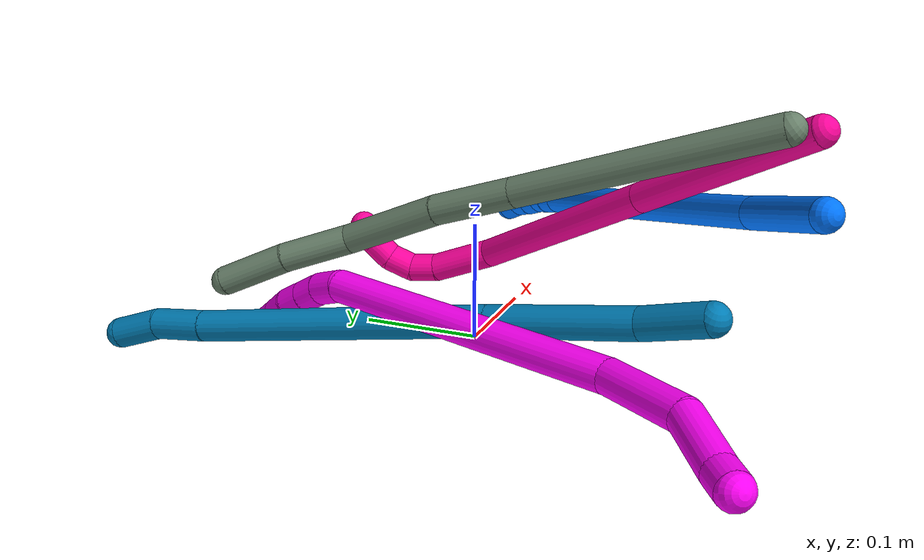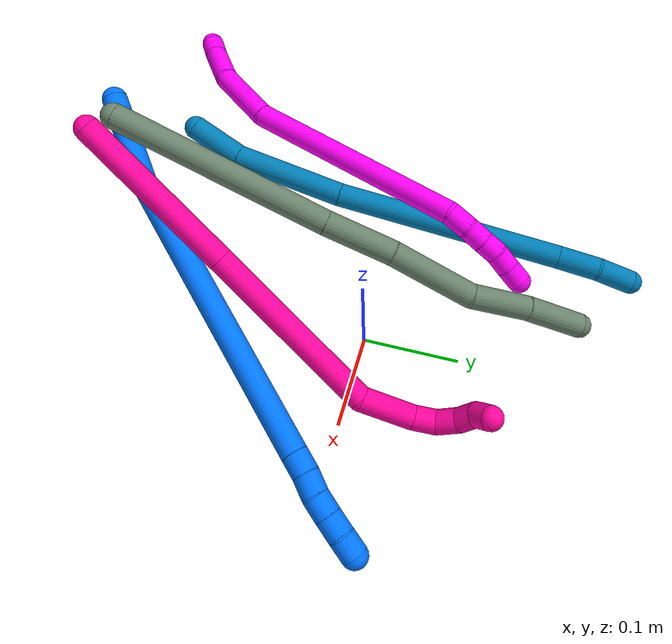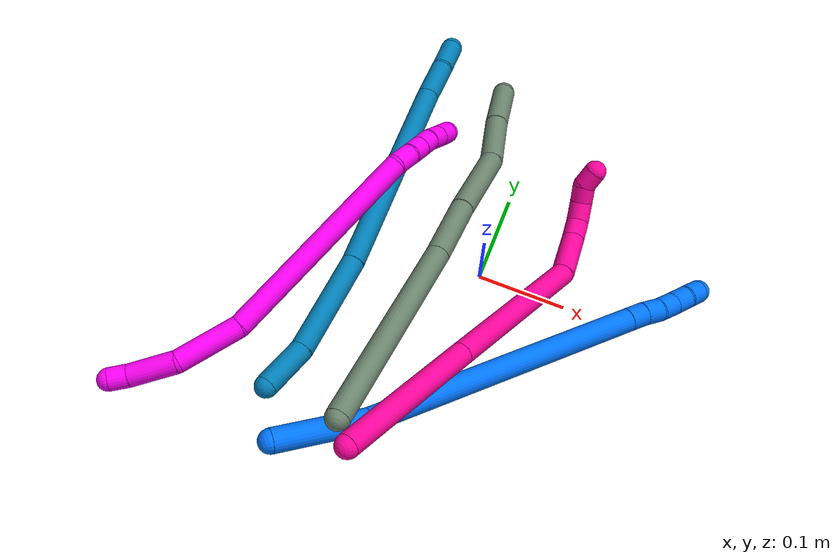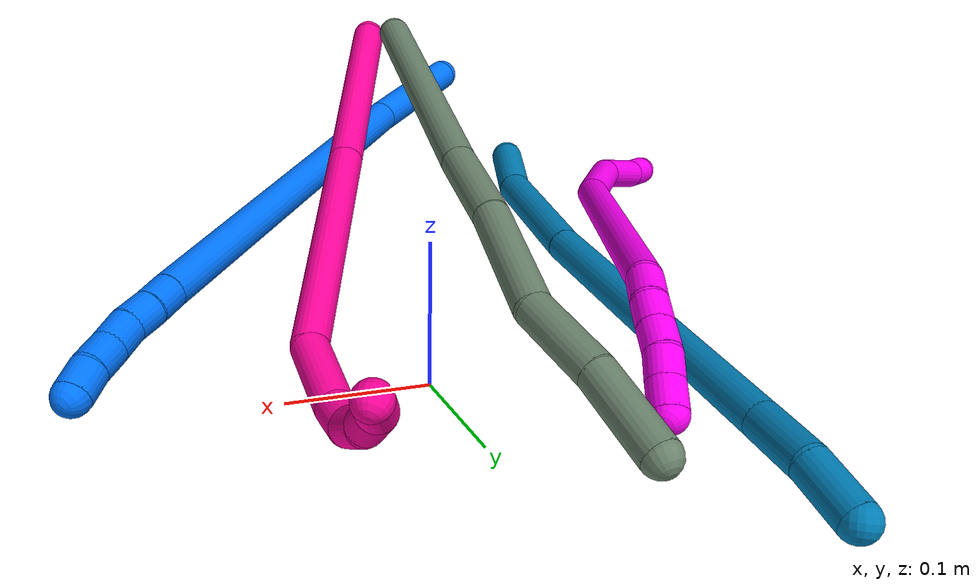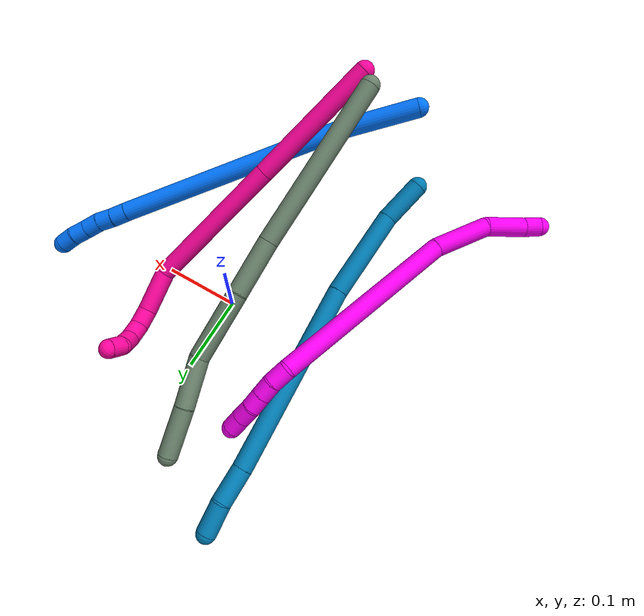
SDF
<sdf version="1.7">
 <world name="default">
  <model name="9">
   <static>0</static>
   <link name="9">
    <collision name="collision-cylinder-e_1_1_4">
     <pose>-0.011747 0.019186 -0.016974 -2.29511 -0.429957 0.902709</pose>
     <geometry><cylinder><radius>0.0125</radius><length>0.056364</length></cylinder></geometry>
     <surface>
      <friction><ode><mu>1.16</mu><mu2>1.16</mu2><slip1>0</slip1><slip2>0</slip2></ode></friction>
      <contact><ode><kp>1e+06</kp><kd>1</kd><max_vel>0</max_vel><min_depth>0.001</min_depth></ode></contact>
     </surface>
    </collision>
    <visual name="visual-cylinder-e_1_1_4">
     <pose>-0.011747 0.019186 -0.016974 -2.29511 -0.429957 0.902709</pose>
     <geometry><cylinder><radius>0.0125</radius><length>0.056364</length></cylinder></geometry>
     <material><ambient>0 0.490196 0.709804 1</ambient></material>
    </visual>
    <collision name="collision-cylinder-e_2_4_5">
     <pose>-0.05831 0.07671 -0.060758 -2.18105 -0.639781 1.13277</pose>
     <geometry><cylinder><radius>0.0125</radius><length>0.11663</length></cylinder></geometry>
     <surface>
      <friction><ode><mu>1.16</mu><mu2>1.16</mu2><slip1>0</slip1><slip2>0</slip2></ode></friction>
      <contact><ode><kp>1e+06</kp><kd>1</kd><max_vel>0</max_vel><min_depth>0.001</min_depth></ode></contact>
     </surface>
    </collision>
    <visual name="visual-cylinder-e_2_4_5">
     <pose>-0.05831 0.07671 -0.060758 -2.18105 -0.639781 1.13277</pose>
     <geometry><cylinder><radius>0.0125</radius><length>0.11663</length></cylinder></geometry>
     <material><ambient>0 0.490196 0.709804 1</ambient></material>
    </visual>
    <collision name="collision-cylinder-e_3_5_6">
     <pose>-0.17498 0.187871 -0.140292 -2.19745 -0.738558 1.29725</pose>
     <geometry><cylinder><radius>0.0125</radius><length>0.243174</length></cylinder></geometry>
     <surface>
      <friction><ode><mu>1.16</mu><mu2>1.16</mu2><slip1>0</slip1><slip2>0</slip2></ode></friction>
      <contact><ode><kp>1e+06</kp><kd>1</kd><max_vel>0</max_vel><min_depth>0.001</min_depth></ode></contact>
     </surface>
    </collision>
    <visual name="visual-cylinder-e_3_5_6">
     <pose>-0.17498 0.187871 -0.140292 -2.19745 -0.738558 1.29725</pose>
     <geometry><cylinder><radius>0.0125</radius><length>0.243174</length></cylinder></geometry>
     <material><ambient>0 0.490196 0.709804 1</ambient></material>
    </visual>
    <collision name="collision-cylinder-e_4_6_7">
     <pose>-0.271002 0.27515 -0.202099 -2.13178 -0.69269 1.15693</pose>
     <geometry><cylinder><radius>0.0125</radius><length>0.04437</length></cylinder></geometry>
     <surface>
      <friction><ode><mu>1.16</mu><mu2>1.16</mu2><slip1>0</slip1><slip2>0</slip2></ode></friction>
      <contact><ode><kp>1e+06</kp><kd>1</kd><max_vel>0</max_vel><min_depth>0.001</min_depth></ode></contact>
     </surface>
    </collision>
    <visual name="visual-cylinder-e_4_6_7">
     <pose>-0.271002 0.27515 -0.202099 -2.13178 -0.69269 1.15693</pose>
     <geometry><cylinder><radius>0.0125</radius><length>0.04437</length></cylinder></geometry>
     <material><ambient>0 0.490196 0.709804 1</ambient></material>
    </visual>
    <collision name="collision-cylinder-e_5_7_2">
     <pose>-0.297945 0.299353 -0.222633 -2.43641 -0.704206 1.56929</pose>
     <geometry><cylinder><radius>0.0125</radius><length>0.039462</length></cylinder></geometry>
     <surface>
      <friction><ode><mu>1.16</mu><mu2>1.16</mu2><slip1>0</slip1><slip2>0</slip2></ode></friction>
      <contact><ode><kp>1e+06</kp><kd>1</kd><max_vel>0</max_vel><min_depth>0.001</min_depth></ode></contact>
     </surface>
    </collision>
    <visual name="visual-cylinder-e_5_7_2">
     <pose>-0.297945 0.299353 -0.222633 -2.43641 -0.704206 1.56929</pose>
     <geometry><cylinder><radius>0.0125</radius><length>0.039462</length></cylinder></geometry>
     <material><ambient>0 0.490196 0.709804 1</ambient></material>
    </visual>
    <collision name="collision-sphere-2">
     <pose>-0.310719 0.3091 -0.234084 0 -0 0</pose>
     <geometry><sphere><radius>0.0125</radius></sphere></geometry>
     <surface>
      <friction><ode><mu>1.16</mu><mu2>1.16</mu2><slip1>0</slip1><slip2>0</slip2></ode></friction>
      <contact><ode><kp>1e+06</kp><kd>1</kd><max_vel>0</max_vel><min_depth>0.001</min_depth></ode></contact>
     </surface>
    </collision>
    <visual name="visual-sphere-2">
     <pose>-0.310719 0.3091 -0.234084 0 -0 0</pose>
     <geometry><sphere><radius>0.0125</radius></sphere></geometry>
     <material><ambient>0 0.490196 0.709804 1</ambient></material>
    </visual>
    <collision name="collision-sphere-7">
     <pose>-0.28517 0.289606 -0.211182 0 -0 0</pose>
     <geometry><sphere><radius>0.0125</radius></sphere></geometry>
     <surface>
      <friction><ode><mu>1.16</mu><mu2>1.16</mu2><slip1>0</slip1><slip2>0</slip2></ode></friction>
      <contact><ode><kp>1e+06</kp><kd>1</kd><max_vel>0</max_vel><min_depth>0.001</min_depth></ode></contact>
     </surface>
    </collision>
    <visual name="visual-sphere-7">
     <pose>-0.28517 0.289606 -0.211182 0 -0 0</pose>
     <geometry><sphere><radius>0.0125</radius></sphere></geometry>
     <material><ambient>0 0.490196 0.709804 1</ambient></material>
    </visual>
    <collision name="collision-sphere-6">
     <pose>-0.256835 0.260695 -0.193016 0 -0 0</pose>
     <geometry><sphere><radius>0.0125</radius></sphere></geometry>
     <surface>
      <friction><ode><mu>1.16</mu><mu2>1.16</mu2><slip1>0</slip1><slip2>0</slip2></ode></friction>
      <contact><ode><kp>1e+06</kp><kd>1</kd><max_vel>0</max_vel><min_depth>0.001</min_depth></ode></contact>
     </surface>
    </collision>
    <visual name="visual-sphere-6">
     <pose>-0.256835 0.260695 -0.193016 0 -0 0</pose>
     <geometry><sphere><radius>0.0125</radius></sphere></geometry>
     <material><ambient>0 0.490196 0.709804 1</ambient></material>
    </visual>
    <collision name="collision-sphere-5">
     <pose>-0.093125 0.115048 -0.087568 0 -0 0</pose>
     <geometry><sphere><radius>0.0125</radius></sphere></geometry>
     <surface>
      <friction><ode><mu>1.16</mu><mu2>1.16</mu2><slip1>0</slip1><slip2>0</slip2></ode></friction>
      <contact><ode><kp>1e+06</kp><kd>1</kd><max_vel>0</max_vel><min_depth>0.001</min_depth></ode></contact>
     </surface>
    </collision>
    <visual name="visual-sphere-5">
     <pose>-0.093125 0.115048 -0.087568 0 -0 0</pose>
     <geometry><sphere><radius>0.0125</radius></sphere></geometry>
     <material><ambient>0 0.490196 0.709804 1</ambient></material>
    </visual>
    <collision name="collision-sphere-1">
     <geometry><sphere><radius>0.0125</radius></sphere></geometry>
     <surface>
      <friction><ode><mu>1.16</mu><mu2>1.16</mu2><slip1>0</slip1><slip2>0</slip2></ode></friction>
      <contact><ode><kp>1e+06</kp><kd>1</kd><max_vel>0</max_vel><min_depth>0.001</min_depth></ode></contact>
     </surface>
    </collision>
    <visual name="visual-sphere-1">
     <geometry><sphere><radius>0.0125</radius></sphere></geometry>
     <material><ambient>0 0.490196 0.709804 1</ambient></material>
    </visual>
    <collision name="collision-sphere-4">
     <pose>-0.023494 0.038372 -0.033949 0 -0 0</pose>
     <geometry><sphere><radius>0.0125</radius></sphere></geometry>
     <surface>
      <friction><ode><mu>1.16</mu><mu2>1.16</mu2><slip1>0</slip1><slip2>0</slip2></ode></friction>
      <contact><ode><kp>1e+06</kp><kd>1</kd><max_vel>0</max_vel><min_depth>0.001</min_depth></ode></contact>
     </surface>
    </collision>
    <visual name="visual-sphere-4">
     <pose>-0.023494 0.038372 -0.033949 0 -0 0</pose>
     <geometry><sphere><radius>0.0125</radius></sphere></geometry>
     <material><ambient>0 0.490196 0.709804 1</ambient></material>
    </visual>
    <inertial>
     <pose>-0.14759 0.15947 -0.119822 0 -0 0</pose>
     <mass>0.5</mass>
     <inertia><ixx>0.001259</ixx><ixy>0</ixy><ixz>0</ixz><iyy>0.00148</iyy><iyz>0</iyz><izz>6e-05</izz></inertia>
    </inertial>
   </link>
   <pose>-0.149051 -0.227487 0.106081 0.386956 0.026964 -0.727744</pose>
  </model>
  <model name="10">
   <static>0</static>
   <link name="10">
    <collision name="collision-cylinder-e_1_1_4">
     <pose>0.003674 -0.001121 -0.009723 3.02682 0.359086 2.52847</pose>
     <geometry><cylinder><radius>0.0125</radius><length>0.020909</length></cylinder></geometry>
     <surface>
      <friction><ode><mu>1.16</mu><mu2>1.16</mu2><slip1>0</slip1><slip2>0</slip2></ode></friction>
      <contact><ode><kp>1e+06</kp><kd>1</kd><max_vel>0</max_vel><min_depth>0.001</min_depth></ode></contact>
     </surface>
    </collision>
    <visual name="visual-cylinder-e_1_1_4">
     <pose>0.003674 -0.001121 -0.009723 3.02682 0.359086 2.52847</pose>
     <geometry><cylinder><radius>0.0125</radius><length>0.020909</length></cylinder></geometry>
     <material><ambient>1 0 0.964706 1</ambient></material>
    </visual>
    <collision name="collision-cylinder-e_2_4_5">
     <pose>0.020656 -0.003711 -0.042235 3.07723 0.527667 2.90438</pose>
     <geometry><cylinder><radius>0.0125</radius><length>0.052862</length></cylinder></geometry>
     <surface>
      <friction><ode><mu>1.16</mu><mu2>1.16</mu2><slip1>0</slip1><slip2>0</slip2></ode></friction>
      <contact><ode><kp>1e+06</kp><kd>1</kd><max_vel>0</max_vel><min_depth>0.001</min_depth></ode></contact>
     </surface>
    </collision>
    <visual name="visual-cylinder-e_2_4_5">
     <pose>0.020656 -0.003711 -0.042235 3.07723 0.527667 2.90438</pose>
     <geometry><cylinder><radius>0.0125</radius><length>0.052862</length></cylinder></geometry>
     <material><ambient>1 0 0.964706 1</ambient></material>
    </visual>
    <collision name="collision-cylinder-e_3_5_6">
     <pose>0.044129 0.00432 -0.098673 -2.86644 0.282897 -1.59891</pose>
     <geometry><cylinder><radius>0.0125</radius><length>0.072822</length></cylinder></geometry>
     <surface>
      <friction><ode><mu>1.16</mu><mu2>1.16</mu2><slip1>0</slip1><slip2>0</slip2></ode></friction>
      <contact><ode><kp>1e+06</kp><kd>1</kd><max_vel>0</max_vel><min_depth>0.001</min_depth></ode></contact>
     </surface>
    </collision>
    <visual name="visual-cylinder-e_3_5_6">
     <pose>0.044129 0.00432 -0.098673 -2.86644 0.282897 -1.59891</pose>
     <geometry><cylinder><radius>0.0125</radius><length>0.072822</length></cylinder></geometry>
     <material><ambient>1 0 0.964706 1</ambient></material>
    </visual>
    <collision name="collision-cylinder-e_4_6_7">
     <pose>0.08655 0.079067 -0.232581 -2.56467 0.263396 -0.839715</pose>
     <geometry><cylinder><radius>0.0125</radius><length>0.247787</length></cylinder></geometry>
     <surface>
      <friction><ode><mu>1.16</mu><mu2>1.16</mu2><slip1>0</slip1><slip2>0</slip2></ode></friction>
      <contact><ode><kp>1e+06</kp><kd>1</kd><max_vel>0</max_vel><min_depth>0.001</min_depth></ode></contact>
     </surface>
    </collision>
    <visual name="visual-cylinder-e_4_6_7">
     <pose>0.08655 0.079067 -0.232581 -2.56467 0.263396 -0.839715</pose>
     <geometry><cylinder><radius>0.0125</radius><length>0.247787</length></cylinder></geometry>
     <material><ambient>1 0 0.964706 1</ambient></material>
    </visual>
    <collision name="collision-cylinder-e_5_7_8">
     <pose>0.118131 0.149815 -0.343731 -2.67385 -0.055287 0.231101</pose>
     <geometry><cylinder><radius>0.0125</radius><length>0.02444</length></cylinder></geometry>
     <surface>
      <friction><ode><mu>1.16</mu><mu2>1.16</mu2><slip1>0</slip1><slip2>0</slip2></ode></friction>
      <contact><ode><kp>1e+06</kp><kd>1</kd><max_vel>0</max_vel><min_depth>0.001</min_depth></ode></contact>
     </surface>
    </collision>
    <visual name="visual-cylinder-e_5_7_8">
     <pose>0.118131 0.149815 -0.343731 -2.67385 -0.055287 0.231101</pose>
     <geometry><cylinder><radius>0.0125</radius><length>0.02444</length></cylinder></geometry>
     <material><ambient>1 0 0.964706 1</ambient></material>
    </visual>
    <collision name="collision-cylinder-e_6_8_9">
     <pose>0.114814 0.160123 -0.363256 -2.63367 -0.261214 0.936956</pose>
     <geometry><cylinder><radius>0.0125</radius><length>0.020458</length></cylinder></geometry>
     <surface>
      <friction><ode><mu>1.16</mu><mu2>1.16</mu2><slip1>0</slip1><slip2>0</slip2></ode></friction>
      <contact><ode><kp>1e+06</kp><kd>1</kd><max_vel>0</max_vel><min_depth>0.001</min_depth></ode></contact>
     </surface>
    </collision>
    <visual name="visual-cylinder-e_6_8_9">
     <pose>0.114814 0.160123 -0.363256 -2.63367 -0.261214 0.936956</pose>
     <geometry><cylinder><radius>0.0125</radius><length>0.020458</length></cylinder></geometry>
     <material><ambient>1 0 0.964706 1</ambient></material>
    </visual>
    <collision name="collision-cylinder-e_7_9_10">
     <pose>0.109505 0.16981 -0.380303 -2.61579 -0.267733 0.927931</pose>
     <geometry><cylinder><radius>0.0125</radius><length>0.020169</length></cylinder></geometry>
     <surface>
      <friction><ode><mu>1.16</mu><mu2>1.16</mu2><slip1>0</slip1><slip2>0</slip2></ode></friction>
      <contact><ode><kp>1e+06</kp><kd>1</kd><max_vel>0</max_vel><min_depth>0.001</min_depth></ode></contact>
     </surface>
    </collision>
    <visual name="visual-cylinder-e_7_9_10">
     <pose>0.109505 0.16981 -0.380303 -2.61579 -0.267733 0.927931</pose>
     <geometry><cylinder><radius>0.0125</radius><length>0.020169</length></cylinder></geometry>
     <material><ambient>1 0 0.964706 1</ambient></material>
    </visual>
    <collision name="collision-cylinder-e_8_10_11">
     <pose>0.103048 0.178043 -0.397348 -2.77135 -0.388388 1.6198</pose>
     <geometry><cylinder><radius>0.0125</radius><length>0.020013</length></cylinder></geometry>
     <surface>
      <friction><ode><mu>1.16</mu><mu2>1.16</mu2><slip1>0</slip1><slip2>0</slip2></ode></friction>
      <contact><ode><kp>1e+06</kp><kd>1</kd><max_vel>0</max_vel><min_depth>0.001</min_depth></ode></contact>
     </surface>
    </collision>
    <visual name="visual-cylinder-e_8_10_11">
     <pose>0.103048 0.178043 -0.397348 -2.77135 -0.388388 1.6198</pose>
     <geometry><cylinder><radius>0.0125</radius><length>0.020013</length></cylinder></geometry>
     <material><ambient>1 0 0.964706 1</ambient></material>
    </visual>
    <collision name="collision-cylinder-e_9_11_2">
     <pose>0.095381 0.185049 -0.41476 -2.74706 -0.387146 1.55141</pose>
     <geometry><cylinder><radius>0.0125</radius><length>0.020539</length></cylinder></geometry>
     <surface>
      <friction><ode><mu>1.16</mu><mu2>1.16</mu2><slip1>0</slip1><slip2>0</slip2></ode></friction>
      <contact><ode><kp>1e+06</kp><kd>1</kd><max_vel>0</max_vel><min_depth>0.001</min_depth></ode></contact>
     </surface>
    </collision>
    <visual name="visual-cylinder-e_9_11_2">
     <pose>0.095381 0.185049 -0.41476 -2.74706 -0.387146 1.55141</pose>
     <geometry><cylinder><radius>0.0125</radius><length>0.020539</length></cylinder></geometry>
     <material><ambient>1 0 0.964706 1</ambient></material>
    </visual>
    <collision name="collision-sphere-2">
     <pose>0.091504 0.188704 -0.423539 0 -0 0</pose>
     <geometry><sphere><radius>0.0125</radius></sphere></geometry>
     <surface>
      <friction><ode><mu>1.16</mu><mu2>1.16</mu2><slip1>0</slip1><slip2>0</slip2></ode></friction>
      <contact><ode><kp>1e+06</kp><kd>1</kd><max_vel>0</max_vel><min_depth>0.001</min_depth></ode></contact>
     </surface>
    </collision>
    <visual name="visual-sphere-2">
     <pose>0.091504 0.188704 -0.423539 0 -0 0</pose>
     <geometry><sphere><radius>0.0125</radius></sphere></geometry>
     <material><ambient>1 0 0.964706 1</ambient></material>
    </visual>
    <collision name="collision-sphere-11">
     <pose>0.099258 0.181394 -0.405981 0 -0 0</pose>
     <geometry><sphere><radius>0.0125</radius></sphere></geometry>
     <surface>
      <friction><ode><mu>1.16</mu><mu2>1.16</mu2><slip1>0</slip1><slip2>0</slip2></ode></friction>
      <contact><ode><kp>1e+06</kp><kd>1</kd><max_vel>0</max_vel><min_depth>0.001</min_depth></ode></contact>
     </surface>
    </collision>
    <visual name="visual-sphere-11">
     <pose>0.099258 0.181394 -0.405981 0 -0 0</pose>
     <geometry><sphere><radius>0.0125</radius></sphere></geometry>
     <material><ambient>1 0 0.964706 1</ambient></material>
    </visual>
    <collision name="collision-sphere-10">
     <pose>0.106837 0.174692 -0.388714 0 -0 0</pose>
     <geometry><sphere><radius>0.0125</radius></sphere></geometry>
     <surface>
      <friction><ode><mu>1.16</mu><mu2>1.16</mu2><slip1>0</slip1><slip2>0</slip2></ode></friction>
      <contact><ode><kp>1e+06</kp><kd>1</kd><max_vel>0</max_vel><min_depth>0.001</min_depth></ode></contact>
     </surface>
    </collision>
    <visual name="visual-sphere-10">
     <pose>0.106837 0.174692 -0.388714 0 -0 0</pose>
     <geometry><sphere><radius>0.0125</radius></sphere></geometry>
     <material><ambient>1 0 0.964706 1</ambient></material>
    </visual>
    <collision name="collision-sphere-9">
     <pose>0.112173 0.164929 -0.371891 0 -0 0</pose>
     <geometry><sphere><radius>0.0125</radius></sphere></geometry>
     <surface>
      <friction><ode><mu>1.16</mu><mu2>1.16</mu2><slip1>0</slip1><slip2>0</slip2></ode></friction>
      <contact><ode><kp>1e+06</kp><kd>1</kd><max_vel>0</max_vel><min_depth>0.001</min_depth></ode></contact>
     </surface>
    </collision>
    <visual name="visual-sphere-9">
     <pose>0.112173 0.164929 -0.371891 0 -0 0</pose>
     <geometry><sphere><radius>0.0125</radius></sphere></geometry>
     <material><ambient>1 0 0.964706 1</ambient></material>
    </visual>
    <collision name="collision-sphere-4">
     <pose>0.007348 -0.002242 -0.019446 0 -0 0</pose>
     <geometry><sphere><radius>0.0125</radius></sphere></geometry>
     <surface>
      <friction><ode><mu>1.16</mu><mu2>1.16</mu2><slip1>0</slip1><slip2>0</slip2></ode></friction>
      <contact><ode><kp>1e+06</kp><kd>1</kd><max_vel>0</max_vel><min_depth>0.001</min_depth></ode></contact>
     </surface>
    </collision>
    <visual name="visual-sphere-4">
     <pose>0.007348 -0.002242 -0.019446 0 -0 0</pose>
     <geometry><sphere><radius>0.0125</radius></sphere></geometry>
     <material><ambient>1 0 0.964706 1</ambient></material>
    </visual>
    <collision name="collision-sphere-1">
     <geometry><sphere><radius>0.0125</radius></sphere></geometry>
     <surface>
      <friction><ode><mu>1.16</mu><mu2>1.16</mu2><slip1>0</slip1><slip2>0</slip2></ode></friction>
      <contact><ode><kp>1e+06</kp><kd>1</kd><max_vel>0</max_vel><min_depth>0.001</min_depth></ode></contact>
     </surface>
    </collision>
    <visual name="visual-sphere-1">
     <geometry><sphere><radius>0.0125</radius></sphere></geometry>
     <material><ambient>1 0 0.964706 1</ambient></material>
    </visual>
    <collision name="collision-sphere-8">
     <pose>0.117456 0.155316 -0.354622 0 -0 0</pose>
     <geometry><sphere><radius>0.0125</radius></sphere></geometry>
     <surface>
      <friction><ode><mu>1.16</mu><mu2>1.16</mu2><slip1>0</slip1><slip2>0</slip2></ode></friction>
      <contact><ode><kp>1e+06</kp><kd>1</kd><max_vel>0</max_vel><min_depth>0.001</min_depth></ode></contact>
     </surface>
    </collision>
    <visual name="visual-sphere-8">
     <pose>0.117456 0.155316 -0.354622 0 -0 0</pose>
     <geometry><sphere><radius>0.0125</radius></sphere></geometry>
     <material><ambient>1 0 0.964706 1</ambient></material>
    </visual>
    <collision name="collision-sphere-5">
     <pose>0.033965 -0.005179 -0.065024 0 -0 0</pose>
     <geometry><sphere><radius>0.0125</radius></sphere></geometry>
     <surface>
      <friction><ode><mu>1.16</mu><mu2>1.16</mu2><slip1>0</slip1><slip2>0</slip2></ode></friction>
      <contact><ode><kp>1e+06</kp><kd>1</kd><max_vel>0</max_vel><min_depth>0.001</min_depth></ode></contact>
     </surface>
    </collision>
    <visual name="visual-sphere-5">
     <pose>0.033965 -0.005179 -0.065024 0 -0 0</pose>
     <geometry><sphere><radius>0.0125</radius></sphere></geometry>
     <material><ambient>1 0 0.964706 1</ambient></material>
    </visual>
    <collision name="collision-sphere-6">
     <pose>0.054293 0.01382 -0.132321 0 -0 0</pose>
     <geometry><sphere><radius>0.0125</radius></sphere></geometry>
     <surface>
      <friction><ode><mu>1.16</mu><mu2>1.16</mu2><slip1>0</slip1><slip2>0</slip2></ode></friction>
      <contact><ode><kp>1e+06</kp><kd>1</kd><max_vel>0</max_vel><min_depth>0.001</min_depth></ode></contact>
     </surface>
    </collision>
    <visual name="visual-sphere-6">
     <pose>0.054293 0.01382 -0.132321 0 -0 0</pose>
     <geometry><sphere><radius>0.0125</radius></sphere></geometry>
     <material><ambient>1 0 0.964706 1</ambient></material>
    </visual>
    <collision name="collision-sphere-7">
     <pose>0.118807 0.144314 -0.33284 0 -0 0</pose>
     <geometry><sphere><radius>0.0125</radius></sphere></geometry>
     <surface>
      <friction><ode><mu>1.16</mu><mu2>1.16</mu2><slip1>0</slip1><slip2>0</slip2></ode></friction>
      <contact><ode><kp>1e+06</kp><kd>1</kd><max_vel>0</max_vel><min_depth>0.001</min_depth></ode></contact>
     </surface>
    </collision>
    <visual name="visual-sphere-7">
     <pose>0.118807 0.144314 -0.33284 0 -0 0</pose>
     <geometry><sphere><radius>0.0125</radius></sphere></geometry>
     <material><ambient>1 0 0.964706 1</ambient></material>
    </visual>
    <inertial>
     <pose>0.074588 0.074826 -0.214451 0 -0 0</pose>
     <mass>0.5</mass>
     <inertia>
      <ixx>-0.000122</ixx>
      <ixy>0</ixy>
      <ixz>0</ixz>
      <iyy>-0.001491</iyy>
      <iyz>0</iyz>
      <izz>-0.001066</izz>
     </inertia>
    </inertial>
   </link>
   <pose>-0.30977 -0.274166 0.07395 0.176156 -1.21708 0.512897</pose>
  </model>
  <model name="14">
   <static>0</static>
   <link name="14">
    <collision name="collision-cylinder-e_1_1_4">
     <pose>0.009544 -7e-05 -0.047492 3.14013 0.198312 3.12687</pose>
     <geometry><cylinder><radius>0.0125</radius><length>0.096883</length></cylinder></geometry>
     <surface>
      <friction><ode><mu>1.16</mu><mu2>1.16</mu2><slip1>0</slip1><slip2>0</slip2></ode></friction>
      <contact><ode><kp>1e+06</kp><kd>1</kd><max_vel>0</max_vel><min_depth>0.001</min_depth></ode></contact>
     </surface>
    </collision>
    <visual name="visual-cylinder-e_1_1_4">
     <pose>0.009544 -7e-05 -0.047492 3.14013 0.198312 3.12687</pose>
     <geometry><cylinder><radius>0.0125</radius><length>0.096883</length></cylinder></geometry>
     <material><ambient>0 0.462745 1 1</ambient></material>
    </visual>
    <collision name="collision-cylinder-e_2_4_5">
     <pose>0.026433 0.005405 -0.245736 -3.10483 0.048654 -1.84759</pose>
     <geometry><cylinder><radius>0.0125</radius><length>0.302066</length></cylinder></geometry>
     <surface>
      <friction><ode><mu>1.16</mu><mu2>1.16</mu2><slip1>0</slip1><slip2>0</slip2></ode></friction>
      <contact><ode><kp>1e+06</kp><kd>1</kd><max_vel>0</max_vel><min_depth>0.001</min_depth></ode></contact>
     </surface>
    </collision>
    <visual name="visual-cylinder-e_2_4_5">
     <pose>0.026433 0.005405 -0.245736 -3.10483 0.048654 -1.84759</pose>
     <geometry><cylinder><radius>0.0125</radius><length>0.302066</length></cylinder></geometry>
     <material><ambient>0 0.462745 1 1</ambient></material>
    </visual>
    <collision name="collision-cylinder-e_3_5_6">
     <pose>0.034189 0.010932 -0.406558 3.13986 0.040738 3.05673</pose>
     <geometry><cylinder><radius>0.0125</radius><length>0.020156</length></cylinder></geometry>
     <surface>
      <friction><ode><mu>1.16</mu><mu2>1.16</mu2><slip1>0</slip1><slip2>0</slip2></ode></friction>
      <contact><ode><kp>1e+06</kp><kd>1</kd><max_vel>0</max_vel><min_depth>0.001</min_depth></ode></contact>
     </surface>
    </collision>
    <visual name="visual-cylinder-e_3_5_6">
     <pose>0.034189 0.010932 -0.406558 3.13986 0.040738 3.05673</pose>
     <geometry><cylinder><radius>0.0125</radius><length>0.020156</length></cylinder></geometry>
     <material><ambient>0 0.462745 1 1</ambient></material>
    </visual>
    <collision name="collision-cylinder-e_4_6_7">
     <pose>0.036029 0.010888 -0.426651 3.13896 0.141712 3.10458</pose>
     <geometry><cylinder><radius>0.0125</radius><length>0.02025</length></cylinder></geometry>
     <surface>
      <friction><ode><mu>1.16</mu><mu2>1.16</mu2><slip1>0</slip1><slip2>0</slip2></ode></friction>
      <contact><ode><kp>1e+06</kp><kd>1</kd><max_vel>0</max_vel><min_depth>0.001</min_depth></ode></contact>
     </surface>
    </collision>
    <visual name="visual-cylinder-e_4_6_7">
     <pose>0.036029 0.010888 -0.426651 3.13896 0.141712 3.10458</pose>
     <geometry><cylinder><radius>0.0125</radius><length>0.02025</length></cylinder></geometry>
     <material><ambient>0 0.462745 1 1</ambient></material>
    </visual>
    <collision name="collision-cylinder-e_5_7_8">
     <pose>0.037314 0.009779 -0.446737 3.03442 -0.014377 -0.266466</pose>
     <geometry><cylinder><radius>0.0125</radius><length>0.020243</length></cylinder></geometry>
     <surface>
      <friction><ode><mu>1.16</mu><mu2>1.16</mu2><slip1>0</slip1><slip2>0</slip2></ode></friction>
      <contact><ode><kp>1e+06</kp><kd>1</kd><max_vel>0</max_vel><min_depth>0.001</min_depth></ode></contact>
     </surface>
    </collision>
    <visual name="visual-cylinder-e_5_7_8">
     <pose>0.037314 0.009779 -0.446737 3.03442 -0.014377 -0.266466</pose>
     <geometry><cylinder><radius>0.0125</radius><length>0.020243</length></cylinder></geometry>
     <material><ambient>0 0.462745 1 1</ambient></material>
    </visual>
    <collision name="collision-cylinder-e_6_8_9">
     <pose>0.036793 0.008298 -0.466984 3.10251 -0.036826 -1.51139</pose>
     <geometry><cylinder><radius>0.0125</radius><length>0.020398</length></cylinder></geometry>
     <surface>
      <friction><ode><mu>1.16</mu><mu2>1.16</mu2><slip1>0</slip1><slip2>0</slip2></ode></friction>
      <contact><ode><kp>1e+06</kp><kd>1</kd><max_vel>0</max_vel><min_depth>0.001</min_depth></ode></contact>
     </surface>
    </collision>
    <visual name="visual-cylinder-e_6_8_9">
     <pose>0.036793 0.008298 -0.466984 3.10251 -0.036826 -1.51139</pose>
     <geometry><cylinder><radius>0.0125</radius><length>0.020398</length></cylinder></geometry>
     <material><ambient>0 0.462745 1 1</ambient></material>
    </visual>
    <collision name="collision-cylinder-e_7_9_2">
     <pose>0.035835 0.005784 -0.486927 2.92808 -0.058206 -0.530508</pose>
     <geometry><cylinder><radius>0.0125</radius><length>0.020004</length></cylinder></geometry>
     <surface>
      <friction><ode><mu>1.16</mu><mu2>1.16</mu2><slip1>0</slip1><slip2>0</slip2></ode></friction>
      <contact><ode><kp>1e+06</kp><kd>1</kd><max_vel>0</max_vel><min_depth>0.001</min_depth></ode></contact>
     </surface>
    </collision>
    <visual name="visual-cylinder-e_7_9_2">
     <pose>0.035835 0.005784 -0.486927 2.92808 -0.058206 -0.530508</pose>
     <geometry><cylinder><radius>0.0125</radius><length>0.020004</length></cylinder></geometry>
     <material><ambient>0 0.462745 1 1</ambient></material>
    </visual>
    <collision name="collision-sphere-2">
     <pose>0.035253 0.003669 -0.496685 0 -0 0</pose>
     <geometry><sphere><radius>0.0125</radius></sphere></geometry>
     <surface>
      <friction><ode><mu>1.16</mu><mu2>1.16</mu2><slip1>0</slip1><slip2>0</slip2></ode></friction>
      <contact><ode><kp>1e+06</kp><kd>1</kd><max_vel>0</max_vel><min_depth>0.001</min_depth></ode></contact>
     </surface>
    </collision>
    <visual name="visual-sphere-2">
     <pose>0.035253 0.003669 -0.496685 0 -0 0</pose>
     <geometry><sphere><radius>0.0125</radius></sphere></geometry>
     <material><ambient>0 0.462745 1 1</ambient></material>
    </visual>
    <collision name="collision-sphere-9">
     <pose>0.036417 0.0079 -0.477168 0 -0 0</pose>
     <geometry><sphere><radius>0.0125</radius></sphere></geometry>
     <surface>
      <friction><ode><mu>1.16</mu><mu2>1.16</mu2><slip1>0</slip1><slip2>0</slip2></ode></friction>
      <contact><ode><kp>1e+06</kp><kd>1</kd><max_vel>0</max_vel><min_depth>0.001</min_depth></ode></contact>
     </surface>
    </collision>
    <visual name="visual-sphere-9">
     <pose>0.036417 0.0079 -0.477168 0 -0 0</pose>
     <geometry><sphere><radius>0.0125</radius></sphere></geometry>
     <material><ambient>0 0.462745 1 1</ambient></material>
    </visual>
    <collision name="collision-sphere-4">
     <pose>0.019087 -0.000139 -0.094984 0 -0 0</pose>
     <geometry><sphere><radius>0.0125</radius></sphere></geometry>
     <surface>
      <friction><ode><mu>1.16</mu><mu2>1.16</mu2><slip1>0</slip1><slip2>0</slip2></ode></friction>
      <contact><ode><kp>1e+06</kp><kd>1</kd><max_vel>0</max_vel><min_depth>0.001</min_depth></ode></contact>
     </surface>
    </collision>
    <visual name="visual-sphere-4">
     <pose>0.019087 -0.000139 -0.094984 0 -0 0</pose>
     <geometry><sphere><radius>0.0125</radius></sphere></geometry>
     <material><ambient>0 0.462745 1 1</ambient></material>
    </visual>
    <collision name="collision-sphere-1">
     <geometry><sphere><radius>0.0125</radius></sphere></geometry>
     <surface>
      <friction><ode><mu>1.16</mu><mu2>1.16</mu2><slip1>0</slip1><slip2>0</slip2></ode></friction>
      <contact><ode><kp>1e+06</kp><kd>1</kd><max_vel>0</max_vel><min_depth>0.001</min_depth></ode></contact>
     </surface>
    </collision>
    <visual name="visual-sphere-1">
     <geometry><sphere><radius>0.0125</radius></sphere></geometry>
     <material><ambient>0 0.462745 1 1</ambient></material>
    </visual>
    <collision name="collision-sphere-8">
     <pose>0.037168 0.008697 -0.456799 0 -0 0</pose>
     <geometry><sphere><radius>0.0125</radius></sphere></geometry>
     <surface>
      <friction><ode><mu>1.16</mu><mu2>1.16</mu2><slip1>0</slip1><slip2>0</slip2></ode></friction>
      <contact><ode><kp>1e+06</kp><kd>1</kd><max_vel>0</max_vel><min_depth>0.001</min_depth></ode></contact>
     </surface>
    </collision>
    <visual name="visual-sphere-8">
     <pose>0.037168 0.008697 -0.456799 0 -0 0</pose>
     <geometry><sphere><radius>0.0125</radius></sphere></geometry>
     <material><ambient>0 0.462745 1 1</ambient></material>
    </visual>
    <collision name="collision-sphere-5">
     <pose>0.033778 0.010949 -0.396489 0 -0 0</pose>
     <geometry><sphere><radius>0.0125</radius></sphere></geometry>
     <surface>
      <friction><ode><mu>1.16</mu><mu2>1.16</mu2><slip1>0</slip1><slip2>0</slip2></ode></friction>
      <contact><ode><kp>1e+06</kp><kd>1</kd><max_vel>0</max_vel><min_depth>0.001</min_depth></ode></contact>
     </surface>
    </collision>
    <visual name="visual-sphere-5">
     <pose>0.033778 0.010949 -0.396489 0 -0 0</pose>
     <geometry><sphere><radius>0.0125</radius></sphere></geometry>
     <material><ambient>0 0.462745 1 1</ambient></material>
    </visual>
    <collision name="collision-sphere-6">
     <pose>0.034599 0.010914 -0.416628 0 -0 0</pose>
     <geometry><sphere><radius>0.0125</radius></sphere></geometry>
     <surface>
      <friction><ode><mu>1.16</mu><mu2>1.16</mu2><slip1>0</slip1><slip2>0</slip2></ode></friction>
      <contact><ode><kp>1e+06</kp><kd>1</kd><max_vel>0</max_vel><min_depth>0.001</min_depth></ode></contact>
     </surface>
    </collision>
    <visual name="visual-sphere-6">
     <pose>0.034599 0.010914 -0.416628 0 -0 0</pose>
     <geometry><sphere><radius>0.0125</radius></sphere></geometry>
     <material><ambient>0 0.462745 1 1</ambient></material>
    </visual>
    <collision name="collision-sphere-7">
     <pose>0.037459 0.010862 -0.436675 0 -0 0</pose>
     <geometry><sphere><radius>0.0125</radius></sphere></geometry>
     <surface>
      <friction><ode><mu>1.16</mu><mu2>1.16</mu2><slip1>0</slip1><slip2>0</slip2></ode></friction>
      <contact><ode><kp>1e+06</kp><kd>1</kd><max_vel>0</max_vel><min_depth>0.001</min_depth></ode></contact>
     </surface>
    </collision>
    <visual name="visual-sphere-7">
     <pose>0.037459 0.010862 -0.436675 0 -0 0</pose>
     <geometry><sphere><radius>0.0125</radius></sphere></geometry>
     <material><ambient>0 0.462745 1 1</ambient></material>
    </visual>
    <inertial>
     <pose>0.025101 0.005099 -0.247947 0 -0 0</pose>
     <mass>0.5</mass>
     <inertia>
      <ixx>-0.002925</ixx>
      <ixy>0</ixy>
      <ixz>0</ixz>
      <iyy>-0.001505</iyy>
      <iyz>0</iyz>
      <izz>-0.000251</izz>
     </inertia>
    </inertial>
   </link>
   <pose>-0.109011 -0.287452 0.173034 1.30785 0.077958 -0.728363</pose>
  </model>
  <model name="17">
   <static>0</static>
   <link name="17">
    <collision name="collision-cylinder-e_1_1_4">
     <pose>-0.005979 0.04136 -0.101446 -2.75446 -0.054522 0.276438</pose>
     <geometry><cylinder><radius>0.0125</radius><length>0.219434</length></cylinder></geometry>
     <surface>
      <friction><ode><mu>1.16</mu><mu2>1.16</mu2><slip1>0</slip1><slip2>0</slip2></ode></friction>
      <contact><ode><kp>1e+06</kp><kd>1</kd><max_vel>0</max_vel><min_depth>0.001</min_depth></ode></contact>
     </surface>
    </collision>
    <visual name="visual-cylinder-e_1_1_4">
     <pose>-0.005979 0.04136 -0.101446 -2.75446 -0.054522 0.276438</pose>
     <geometry><cylinder><radius>0.0125</radius><length>0.219434</length></cylinder></geometry>
     <material><ambient>0.415686 0.509804 0.423529 1</ambient></material>
    </visual>
    <collision name="collision-cylinder-e_2_4_5">
     <pose>-0.015398 0.095372 -0.235573 -2.77224 -0.097843 0.512651</pose>
     <geometry><cylinder><radius>0.0125</radius><length>0.070424</length></cylinder></geometry>
     <surface>
      <friction><ode><mu>1.16</mu><mu2>1.16</mu2><slip1>0</slip1><slip2>0</slip2></ode></friction>
      <contact><ode><kp>1e+06</kp><kd>1</kd><max_vel>0</max_vel><min_depth>0.001</min_depth></ode></contact>
     </surface>
    </collision>
    <visual name="visual-cylinder-e_2_4_5">
     <pose>-0.015398 0.095372 -0.235573 -2.77224 -0.097843 0.512651</pose>
     <geometry><cylinder><radius>0.0125</radius><length>0.070424</length></cylinder></geometry>
     <material><ambient>0.415686 0.509804 0.423529 1</ambient></material>
    </visual>
    <collision name="collision-cylinder-e_3_5_6">
     <pose>-0.019683 0.121485 -0.310384 -2.83233 -0.019115 0.122478</pose>
     <geometry><cylinder><radius>0.0125</radius><length>0.088475</length></cylinder></geometry>
     <surface>
      <friction><ode><mu>1.16</mu><mu2>1.16</mu2><slip1>0</slip1><slip2>0</slip2></ode></friction>
      <contact><ode><kp>1e+06</kp><kd>1</kd><max_vel>0</max_vel><min_depth>0.001</min_depth></ode></contact>
     </surface>
    </collision>
    <visual name="visual-cylinder-e_3_5_6">
     <pose>-0.019683 0.121485 -0.310384 -2.83233 -0.019115 0.122478</pose>
     <geometry><cylinder><radius>0.0125</radius><length>0.088475</length></cylinder></geometry>
     <material><ambient>0.415686 0.509804 0.423529 1</ambient></material>
    </visual>
    <collision name="collision-cylinder-e_4_6_7">
     <pose>-0.029196 0.140929 -0.380996 -2.93453 -0.289479 1.90299</pose>
     <geometry><cylinder><radius>0.0125</radius><length>0.060731</length></cylinder></geometry>
     <surface>
      <friction><ode><mu>1.16</mu><mu2>1.16</mu2><slip1>0</slip1><slip2>0</slip2></ode></friction>
      <contact><ode><kp>1e+06</kp><kd>1</kd><max_vel>0</max_vel><min_depth>0.001</min_depth></ode></contact>
     </surface>
    </collision>
    <visual name="visual-cylinder-e_4_6_7">
     <pose>-0.029196 0.140929 -0.380996 -2.93453 -0.289479 1.90299</pose>
     <geometry><cylinder><radius>0.0125</radius><length>0.060731</length></cylinder></geometry>
     <material><ambient>0.415686 0.509804 0.423529 1</ambient></material>
    </visual>
    <collision name="collision-cylinder-e_5_7_2">
     <pose>-0.043385 0.152074 -0.438992 -2.96848 -0.182195 1.62215</pose>
     <geometry><cylinder><radius>0.0125</radius><length>0.060937</length></cylinder></geometry>
     <surface>
      <friction><ode><mu>1.16</mu><mu2>1.16</mu2><slip1>0</slip1><slip2>0</slip2></ode></friction>
      <contact><ode><kp>1e+06</kp><kd>1</kd><max_vel>0</max_vel><min_depth>0.001</min_depth></ode></contact>
     </surface>
    </collision>
    <visual name="visual-cylinder-e_5_7_2">
     <pose>-0.043385 0.152074 -0.438992 -2.96848 -0.182195 1.62215</pose>
     <geometry><cylinder><radius>0.0125</radius><length>0.060937</length></cylinder></geometry>
     <material><ambient>0.415686 0.509804 0.423529 1</ambient></material>
    </visual>
    <collision name="collision-sphere-2">
     <pose>-0.048905 0.157235 -0.468508 0 -0 0</pose>
     <geometry><sphere><radius>0.0125</radius></sphere></geometry>
     <surface>
      <friction><ode><mu>1.16</mu><mu2>1.16</mu2><slip1>0</slip1><slip2>0</slip2></ode></friction>
      <contact><ode><kp>1e+06</kp><kd>1</kd><max_vel>0</max_vel><min_depth>0.001</min_depth></ode></contact>
     </surface>
    </collision>
    <visual name="visual-sphere-2">
     <pose>-0.048905 0.157235 -0.468508 0 -0 0</pose>
     <geometry><sphere><radius>0.0125</radius></sphere></geometry>
     <material><ambient>0.415686 0.509804 0.423529 1</ambient></material>
    </visual>
    <collision name="collision-sphere-7">
     <pose>-0.037864 0.146912 -0.409476 0 -0 0</pose>
     <geometry><sphere><radius>0.0125</radius></sphere></geometry>
     <surface>
      <friction><ode><mu>1.16</mu><mu2>1.16</mu2><slip1>0</slip1><slip2>0</slip2></ode></friction>
      <contact><ode><kp>1e+06</kp><kd>1</kd><max_vel>0</max_vel><min_depth>0.001</min_depth></ode></contact>
     </surface>
    </collision>
    <visual name="visual-sphere-7">
     <pose>-0.037864 0.146912 -0.409476 0 -0 0</pose>
     <geometry><sphere><radius>0.0125</radius></sphere></geometry>
     <material><ambient>0.415686 0.509804 0.423529 1</ambient></material>
    </visual>
    <collision name="collision-sphere-6">
     <pose>-0.020529 0.134946 -0.352515 0 -0 0</pose>
     <geometry><sphere><radius>0.0125</radius></sphere></geometry>
     <surface>
      <friction><ode><mu>1.16</mu><mu2>1.16</mu2><slip1>0</slip1><slip2>0</slip2></ode></friction>
      <contact><ode><kp>1e+06</kp><kd>1</kd><max_vel>0</max_vel><min_depth>0.001</min_depth></ode></contact>
     </surface>
    </collision>
    <visual name="visual-sphere-6">
     <pose>-0.020529 0.134946 -0.352515 0 -0 0</pose>
     <geometry><sphere><radius>0.0125</radius></sphere></geometry>
     <material><ambient>0.415686 0.509804 0.423529 1</ambient></material>
    </visual>
    <collision name="collision-sphere-5">
     <pose>-0.018837 0.108023 -0.268253 0 -0 0</pose>
     <geometry><sphere><radius>0.0125</radius></sphere></geometry>
     <surface>
      <friction><ode><mu>1.16</mu><mu2>1.16</mu2><slip1>0</slip1><slip2>0</slip2></ode></friction>
      <contact><ode><kp>1e+06</kp><kd>1</kd><max_vel>0</max_vel><min_depth>0.001</min_depth></ode></contact>
     </surface>
    </collision>
    <visual name="visual-sphere-5">
     <pose>-0.018837 0.108023 -0.268253 0 -0 0</pose>
     <geometry><sphere><radius>0.0125</radius></sphere></geometry>
     <material><ambient>0.415686 0.509804 0.423529 1</ambient></material>
    </visual>
    <collision name="collision-sphere-1">
     <geometry><sphere><radius>0.0125</radius></sphere></geometry>
     <surface>
      <friction><ode><mu>1.16</mu><mu2>1.16</mu2><slip1>0</slip1><slip2>0</slip2></ode></friction>
      <contact><ode><kp>1e+06</kp><kd>1</kd><max_vel>0</max_vel><min_depth>0.001</min_depth></ode></contact>
     </surface>
    </collision>
    <visual name="visual-sphere-1">
     <geometry><sphere><radius>0.0125</radius></sphere></geometry>
     <material><ambient>0.415686 0.509804 0.423529 1</ambient></material>
    </visual>
    <collision name="collision-sphere-4">
     <pose>-0.011958 0.082721 -0.202893 0 -0 0</pose>
     <geometry><sphere><radius>0.0125</radius></sphere></geometry>
     <surface>
      <friction><ode><mu>1.16</mu><mu2>1.16</mu2><slip1>0</slip1><slip2>0</slip2></ode></friction>
      <contact><ode><kp>1e+06</kp><kd>1</kd><max_vel>0</max_vel><min_depth>0.001</min_depth></ode></contact>
     </surface>
    </collision>
    <visual name="visual-sphere-4">
     <pose>-0.011958 0.082721 -0.202893 0 -0 0</pose>
     <geometry><sphere><radius>0.0125</radius></sphere></geometry>
     <material><ambient>0.415686 0.509804 0.423529 1</ambient></material>
    </visual>
    <inertial>
     <pose>-0.017109 0.088733 -0.232402 0 -0 0</pose>
     <mass>0.5</mass>
     <inertia>
      <ixx>0.001236</ixx>
      <ixy>0</ixy>
      <ixz>0</ixz>
      <iyy>-0.000543</iyy>
      <iyz>0</iyz>
      <izz>-0.000347</izz>
     </inertia>
    </inertial>
   </link>
   <pose>-0.053754 -0.252895 0.214623 0.756618 0.53145 -0.358664</pose>
  </model>
  <model name="18">
   <static>0</static>
   <link name="18">
    <collision name="collision-cylinder-e_1_1_4">
     <pose>0.006912 0.015351 -0.084255 -2.96138 0.080531 -0.838856</pose>
     <geometry><cylinder><radius>0.0125</radius><length>0.171841</length></cylinder></geometry>
     <surface>
      <friction><ode><mu>1.16</mu><mu2>1.16</mu2><slip1>0</slip1><slip2>0</slip2></ode></friction>
      <contact><ode><kp>1e+06</kp><kd>1</kd><max_vel>0</max_vel><min_depth>0.001</min_depth></ode></contact>
     </surface>
    </collision>
    <visual name="visual-cylinder-e_1_1_4">
     <pose>0.006912 0.015351 -0.084255 -2.96138 0.080531 -0.838856</pose>
     <geometry><cylinder><radius>0.0125</radius><length>0.171841</length></cylinder></geometry>
     <material><ambient>1 0.007843 0.615686 1</ambient></material>
    </visual>
    <collision name="collision-cylinder-e_2_4_5">
     <pose>0.021314 0.0469 -0.259993 -2.96635 0.080446 -0.859169</pose>
     <geometry><cylinder><radius>0.0125</radius><length>0.186415</length></cylinder></geometry>
     <surface>
      <friction><ode><mu>1.16</mu><mu2>1.16</mu2><slip1>0</slip1><slip2>0</slip2></ode></friction>
      <contact><ode><kp>1e+06</kp><kd>1</kd><max_vel>0</max_vel><min_depth>0.001</min_depth></ode></contact>
     </surface>
    </collision>
    <visual name="visual-cylinder-e_2_4_5">
     <pose>0.021314 0.0469 -0.259993 -2.96635 0.080446 -0.859169</pose>
     <geometry><cylinder><radius>0.0125</radius><length>0.186415</length></cylinder></geometry>
     <material><ambient>1 0.007843 0.615686 1</ambient></material>
    </visual>
    <collision name="collision-cylinder-e_3_5_6">
     <pose>0.029417 0.078632 -0.374052 -2.53889 0.022376 -0.071963</pose>
     <geometry><cylinder><radius>0.0125</radius><length>0.054821</length></cylinder></geometry>
     <surface>
      <friction><ode><mu>1.16</mu><mu2>1.16</mu2><slip1>0</slip1><slip2>0</slip2></ode></friction>
      <contact><ode><kp>1e+06</kp><kd>1</kd><max_vel>0</max_vel><min_depth>0.001</min_depth></ode></contact>
     </surface>
    </collision>
    <visual name="visual-cylinder-e_3_5_6">
     <pose>0.029417 0.078632 -0.374052 -2.53889 0.022376 -0.071963</pose>
     <geometry><cylinder><radius>0.0125</radius><length>0.054821</length></cylinder></geometry>
     <material><ambient>1 0.007843 0.615686 1</ambient></material>
    </visual>
    <collision name="collision-cylinder-e_4_6_7">
     <pose>0.032733 0.102064 -0.404966 -2.38339 0.231142 -0.567113</pose>
     <geometry><cylinder><radius>0.0125</radius><length>0.023597</length></cylinder></geometry>
     <surface>
      <friction><ode><mu>1.16</mu><mu2>1.16</mu2><slip1>0</slip1><slip2>0</slip2></ode></friction>
      <contact><ode><kp>1e+06</kp><kd>1</kd><max_vel>0</max_vel><min_depth>0.001</min_depth></ode></contact>
     </surface>
    </collision>
    <visual name="visual-cylinder-e_4_6_7">
     <pose>0.032733 0.102064 -0.404966 -2.38339 0.231142 -0.567113</pose>
     <geometry><cylinder><radius>0.0125</radius><length>0.023597</length></cylinder></geometry>
     <material><ambient>1 0.007843 0.615686 1</ambient></material>
    </visual>
    <collision name="collision-cylinder-e_5_7_8">
     <pose>0.042033 0.118692 -0.417268 -1.99692 0.60264 -0.898905</pose>
     <geometry><cylinder><radius>0.0125</radius><length>0.023278</length></cylinder></geometry>
     <surface>
      <friction><ode><mu>1.16</mu><mu2>1.16</mu2><slip1>0</slip1><slip2>0</slip2></ode></friction>
      <contact><ode><kp>1e+06</kp><kd>1</kd><max_vel>0</max_vel><min_depth>0.001</min_depth></ode></contact>
     </surface>
    </collision>
    <visual name="visual-cylinder-e_5_7_8">
     <pose>0.042033 0.118692 -0.417268 -1.99692 0.60264 -0.898905</pose>
     <geometry><cylinder><radius>0.0125</radius><length>0.023278</length></cylinder></geometry>
     <material><ambient>1 0.007843 0.615686 1</ambient></material>
    </visual>
    <collision name="collision-cylinder-e_6_8_9">
     <pose>0.056039 0.134159 -0.421461 -1.60488 0.832633 -0.85814</pose>
     <geometry><cylinder><radius>0.0125</radius><length>0.02003</length></cylinder></geometry>
     <surface>
      <friction><ode><mu>1.16</mu><mu2>1.16</mu2><slip1>0</slip1><slip2>0</slip2></ode></friction>
      <contact><ode><kp>1e+06</kp><kd>1</kd><max_vel>0</max_vel><min_depth>0.001</min_depth></ode></contact>
     </surface>
    </collision>
    <visual name="visual-cylinder-e_6_8_9">
     <pose>0.056039 0.134159 -0.421461 -1.60488 0.832633 -0.85814</pose>
     <geometry><cylinder><radius>0.0125</radius><length>0.02003</length></cylinder></geometry>
     <material><ambient>1 0.007843 0.615686 1</ambient></material>
    </visual>
    <collision name="collision-cylinder-e_7_9_2">
     <pose>0.072694 0.143781 -0.424207 -2.28762 1.17821 -1.94609</pose>
     <geometry><cylinder><radius>0.0125</radius><length>0.020018</length></cylinder></geometry>
     <surface>
      <friction><ode><mu>1.16</mu><mu2>1.16</mu2><slip1>0</slip1><slip2>0</slip2></ode></friction>
      <contact><ode><kp>1e+06</kp><kd>1</kd><max_vel>0</max_vel><min_depth>0.001</min_depth></ode></contact>
     </surface>
    </collision>
    <visual name="visual-cylinder-e_7_9_2">
     <pose>0.072694 0.143781 -0.424207 -2.28762 1.17821 -1.94609</pose>
     <geometry><cylinder><radius>0.0125</radius><length>0.020018</length></cylinder></geometry>
     <material><ambient>1 0.007843 0.615686 1</ambient></material>
    </visual>
    <collision name="collision-sphere-2">
     <pose>0.081942 0.146668 -0.426722 0 -0 0</pose>
     <geometry><sphere><radius>0.0125</radius></sphere></geometry>
     <surface>
      <friction><ode><mu>1.16</mu><mu2>1.16</mu2><slip1>0</slip1><slip2>0</slip2></ode></friction>
      <contact><ode><kp>1e+06</kp><kd>1</kd><max_vel>0</max_vel><min_depth>0.001</min_depth></ode></contact>
     </surface>
    </collision>
    <visual name="visual-sphere-2">
     <pose>0.081942 0.146668 -0.426722 0 -0 0</pose>
     <geometry><sphere><radius>0.0125</radius></sphere></geometry>
     <material><ambient>1 0.007843 0.615686 1</ambient></material>
    </visual>
    <collision name="collision-sphere-9">
     <pose>0.063447 0.140894 -0.421691 0 -0 0</pose>
     <geometry><sphere><radius>0.0125</radius></sphere></geometry>
     <surface>
      <friction><ode><mu>1.16</mu><mu2>1.16</mu2><slip1>0</slip1><slip2>0</slip2></ode></friction>
      <contact><ode><kp>1e+06</kp><kd>1</kd><max_vel>0</max_vel><min_depth>0.001</min_depth></ode></contact>
     </surface>
    </collision>
    <visual name="visual-sphere-9">
     <pose>0.063447 0.140894 -0.421691 0 -0 0</pose>
     <geometry><sphere><radius>0.0125</radius></sphere></geometry>
     <material><ambient>1 0.007843 0.615686 1</ambient></material>
    </visual>
    <collision name="collision-sphere-4">
     <pose>0.013824 0.030701 -0.16851 0 -0 0</pose>
     <geometry><sphere><radius>0.0125</radius></sphere></geometry>
     <surface>
      <friction><ode><mu>1.16</mu><mu2>1.16</mu2><slip1>0</slip1><slip2>0</slip2></ode></friction>
      <contact><ode><kp>1e+06</kp><kd>1</kd><max_vel>0</max_vel><min_depth>0.001</min_depth></ode></contact>
     </surface>
    </collision>
    <visual name="visual-sphere-4">
     <pose>0.013824 0.030701 -0.16851 0 -0 0</pose>
     <geometry><sphere><radius>0.0125</radius></sphere></geometry>
     <material><ambient>1 0.007843 0.615686 1</ambient></material>
    </visual>
    <collision name="collision-sphere-1">
     <geometry><sphere><radius>0.0125</radius></sphere></geometry>
     <surface>
      <friction><ode><mu>1.16</mu><mu2>1.16</mu2><slip1>0</slip1><slip2>0</slip2></ode></friction>
      <contact><ode><kp>1e+06</kp><kd>1</kd><max_vel>0</max_vel><min_depth>0.001</min_depth></ode></contact>
     </surface>
    </collision>
    <visual name="visual-sphere-1">
     <geometry><sphere><radius>0.0125</radius></sphere></geometry>
     <material><ambient>1 0.007843 0.615686 1</ambient></material>
    </visual>
    <collision name="collision-sphere-8">
     <pose>0.048631 0.127423 -0.421231 0 -0 0</pose>
     <geometry><sphere><radius>0.0125</radius></sphere></geometry>
     <surface>
      <friction><ode><mu>1.16</mu><mu2>1.16</mu2><slip1>0</slip1><slip2>0</slip2></ode></friction>
      <contact><ode><kp>1e+06</kp><kd>1</kd><max_vel>0</max_vel><min_depth>0.001</min_depth></ode></contact>
     </surface>
    </collision>
    <visual name="visual-sphere-8">
     <pose>0.048631 0.127423 -0.421231 0 -0 0</pose>
     <geometry><sphere><radius>0.0125</radius></sphere></geometry>
     <material><ambient>1 0.007843 0.615686 1</ambient></material>
    </visual>
    <collision name="collision-sphere-5">
     <pose>0.028804 0.063098 -0.351476 0 -0 0</pose>
     <geometry><sphere><radius>0.0125</radius></sphere></geometry>
     <surface>
      <friction><ode><mu>1.16</mu><mu2>1.16</mu2><slip1>0</slip1><slip2>0</slip2></ode></friction>
      <contact><ode><kp>1e+06</kp><kd>1</kd><max_vel>0</max_vel><min_depth>0.001</min_depth></ode></contact>
     </surface>
    </collision>
    <visual name="visual-sphere-5">
     <pose>0.028804 0.063098 -0.351476 0 -0 0</pose>
     <geometry><sphere><radius>0.0125</radius></sphere></geometry>
     <material><ambient>1 0.007843 0.615686 1</ambient></material>
    </visual>
    <collision name="collision-sphere-6">
     <pose>0.03003 0.094167 -0.396627 0 -0 0</pose>
     <geometry><sphere><radius>0.0125</radius></sphere></geometry>
     <surface>
      <friction><ode><mu>1.16</mu><mu2>1.16</mu2><slip1>0</slip1><slip2>0</slip2></ode></friction>
      <contact><ode><kp>1e+06</kp><kd>1</kd><max_vel>0</max_vel><min_depth>0.001</min_depth></ode></contact>
     </surface>
    </collision>
    <visual name="visual-sphere-6">
     <pose>0.03003 0.094167 -0.396627 0 -0 0</pose>
     <geometry><sphere><radius>0.0125</radius></sphere></geometry>
     <material><ambient>1 0.007843 0.615686 1</ambient></material>
    </visual>
    <collision name="collision-sphere-7">
     <pose>0.035436 0.109961 -0.413304 0 -0 0</pose>
     <geometry><sphere><radius>0.0125</radius></sphere></geometry>
     <surface>
      <friction><ode><mu>1.16</mu><mu2>1.16</mu2><slip1>0</slip1><slip2>0</slip2></ode></friction>
      <contact><ode><kp>1e+06</kp><kd>1</kd><max_vel>0</max_vel><min_depth>0.001</min_depth></ode></contact>
     </surface>
    </collision>
    <visual name="visual-sphere-7">
     <pose>0.035436 0.109961 -0.413304 0 -0 0</pose>
     <geometry><sphere><radius>0.0125</radius></sphere></geometry>
     <material><ambient>1 0.007843 0.615686 1</ambient></material>
    </visual>
    <inertial>
     <pose>0.022204 0.052856 -0.239308 0 -0 0</pose>
     <mass>0.5</mass>
     <inertia>
      <ixx>-6.9e-05</ixx>
      <ixy>0</ixy>
      <ixz>0</ixz>
      <iyy>-0.00136</iyy>
      <iyz>0</iyz>
      <izz>-0.000301</izz>
     </inertia>
    </inertial>
   </link>
   <pose>-0.036312 -0.272505 0.211025 0.26808 -0.943658 0.666658</pose>
  </model>
 </world>
</sdf>
